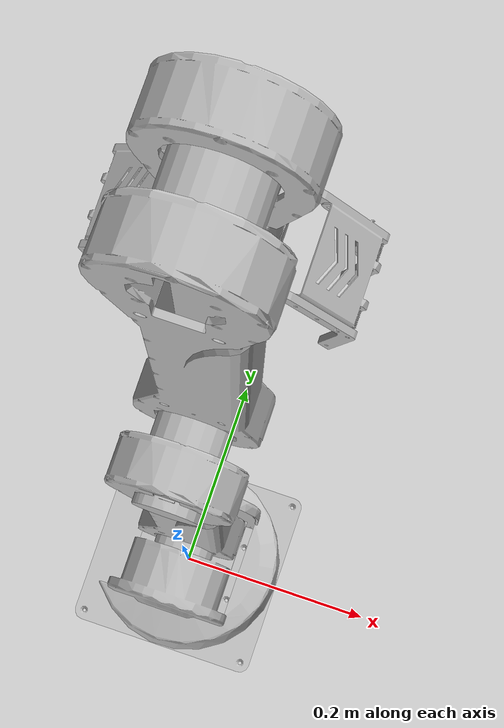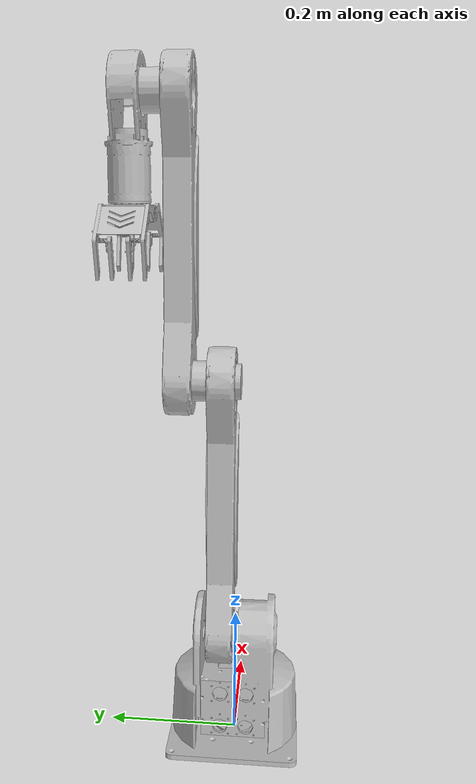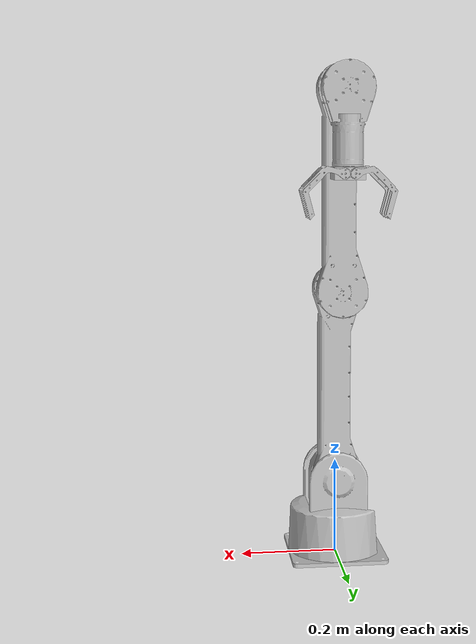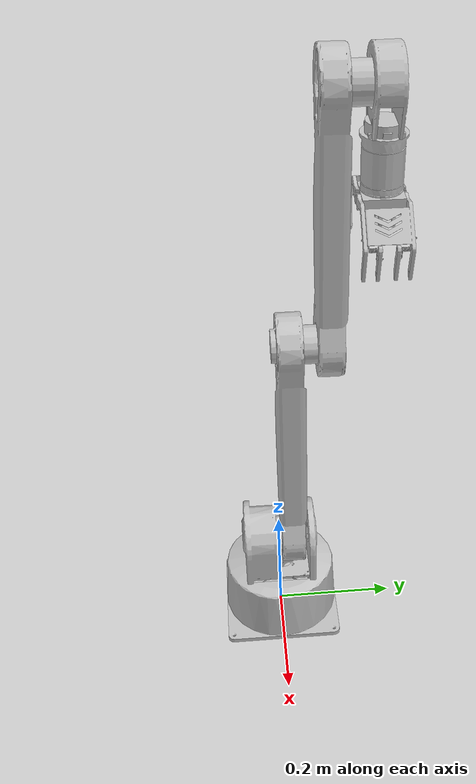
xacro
<?xml version="1.0"?>
<robot name="protobot_arm_gripper" xmlns:xacro="http://ros.org/wiki/xacro">
  <!--Arm body-->
  <xacro:include filename="$(find protobot_arm_description)/urdf/protobot_arm.xacro"/>
  <link name="world"/>
  <xacro:create_arm connected_to="world" xyz="0 0 0.004"/>
  <xacro:include filename="$(find protobot_arm_description)/urdf/protobot_arm.gazebo.xacro"/>
  <xacro:include filename="$(find protobot_arm_description)/urdf/protobot_arm.transmission.xacro"/>
  <xacro:include filename="$(find protobot_gripper_description)/urdf/protobot_gripper.xacro"/>
  <xacro:create_gripper connected_to="flange_motor_link" xyz="0 0 -0.012"/>
  <xacro:include filename="$(find protobot_gripper_description)/urdf/protobot_gripper.transmission.xacro"/>
</robot>

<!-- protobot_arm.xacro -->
<robot xmlns:xacro="http://ros.org/wiki/xacro">
  <xacro:macro name="create_arm" params="connected_to:='' xyz:='0 0 0' rpy:='0 0 0'">
    <xacro:unless value="${connected_to==''}">
      <joint name="arm_base_joint" type="fixed">
        <parent link="${connected_to}"/>
        <child link="arm_base_link"/>
        <origin rpy="${rpy}" xyz="${xyz}"/>
      </joint>
    </xacro:unless>

    <xacro:macro name="inertial_cuboid_with_pose" params="mass x_length y_length z_length *origin">
      <inertial>
        <xacro:insert_block name="origin"/>
        <mass value="${mass}" />
        <inertia ixx="${(1/12) * mass * (y_length*y_length + z_length*z_length)}" ixy="0.0" ixz="0.0"
                 iyy="${(1/12) * mass * (x_length*x_length + z_length*z_length)}" iyz="0.0"
                 izz="${(1/12) * mass * (x_length*x_length + y_length*y_length)}" />
      </inertial>
    </xacro:macro>

    <xacro:macro name="inertial_cylinder_with_pose" params="mass radius length *origin">
      <inertial>
        <xacro:insert_block name="origin"/>
        <mass value="${mass}" />
        <xacro:insert_block name="origin" />
        <inertia ixx="${0.0833333 * mass * (3 * radius * radius + length * length)}" ixy="0.0" ixz="0.0"
          iyy="${0.0833333 * mass * (3 * radius * radius + length * length)}" iyz="0.0"
          izz="${0.5 * mass * radius * radius}" />
      </inertial>
    </xacro:macro>

    <link
      name="arm_base_link">
      <inertial_cuboid_with_pose
        mass="0.2"
        x_length="0.2"
        y_length="0.2"
        z_length="0.008">
        <origin xyz="0 0 0"  rpy="0 0 0"/>
      </inertial_cuboid_with_pose>
      <visual>
        <origin xyz="0 0 -0.004"  rpy="0 0 0"/>
        <geometry>
          <mesh
            filename="package://protobot_arm_description/meshes/base_link.STL" scale="0.001 0.001 0.001"/>
        </geometry>
        <material
          name="">
          <color
            rgba="0.75294 0.75294 0.75294 1" />
        </material>
      </visual>
      <collision>
        <origin
          xyz="0 0 0"
          rpy="0 0 0" />
        <geometry>
          <box size="0.2 0.2 0.008"/>
        </geometry>
      </collision>
    </link>
    <link
      name="rot_link">
      <inertial_cylinder_with_pose
        mass="1.5"
        radius="0.1"
        length="0.1">
        <origin xyz="0 0 0.05"  rpy="0 0 0"/>
      </inertial_cylinder_with_pose>
      <visual>
        <origin
          xyz="0 0 0"
          rpy="0 0 0" />
        <geometry>
          <mesh
            filename="package://protobot_arm_description/meshes/rot_link.STL" scale="0.001 0.001 0.001"/>
        </geometry>
        <material
          name="">
          <color
            rgba="0.75294 0.75294 0.75294 1" />
        </material>
      </visual>
      <collision>
        <origin
          xyz="0 0 0"
          rpy="0 0 0" />
        <geometry>
          <mesh
            filename="package://protobot_arm_description/meshes/rot_collision.STL"/>
        </geometry>
      </collision>
    </link>
    <joint
      name="rot_joint"
      type="continuous">
      <origin
        xyz="0 0 0.004"
        rpy="0 0 0" />
      <parent
        link="arm_base_link" />
      <child
        link="rot_link" />
      <axis
        xyz="0 0 1" />
      <limit
        effort="100"
        velocity="1.0"/>
    </joint>
    <link
      name="umotor_link">
      <inertial_cylinder_with_pose
        mass="1.0"
        radius="0.03"
        length="0.1">
        <origin xyz="0 0.05 0"  rpy="-1.5707 0 0"/>
      </inertial_cylinder_with_pose>
      <visual>
        <origin xyz="0 0 0" rpy="-1.5707 0 0" />
        <geometry>
          <mesh
            filename="package://protobot_arm_description/meshes/motor_link.STL" scale="0.001 0.001 0.001"/>
        </geometry>
        <material
          name="">
          <color
            rgba="0.75294 0.75294 0.75294 1" />
        </material>
      </visual>
      <collision>
        <origin xyz="0 0.05 0"  rpy="-1.5707 0 0" />
        <geometry>
          <cylinder radius="0.03" length="0.1"/>
        </geometry>
      </collision>
    </link>
    <joint
      name="umotor_joint"
      type="fixed">
      <origin
        xyz="0 -0.056 0.161"
        rpy="0 0 0" />
      <parent
        link="rot_link" />
      <child
        link="umotor_link" />
    </joint>
    <link
      name="uarm_link">
      <inertial_cuboid_with_pose
        mass="1.0"
        x_length="0.1"
        y_length="0.05"
        z_length="0.5">
        <origin xyz="0 -0.02 0.2"  rpy="0 0 3.1415926"/>
      </inertial_cuboid_with_pose>
      <visual>
        <origin
          xyz="0 0 0"
          rpy="0 0 3.1415926" />
        <geometry>
          <mesh
            filename="package://protobot_arm_description/meshes/arm_link.STL" scale="0.001 0.001 0.001"/>
        </geometry>
        <material
          name="">
          <color
            rgba="0.75294 0.75294 0.75294 1" />
        </material>
      </visual>
      <collision>
        <origin
          xyz="0 0.004 0"
          rpy="0 0 3.1415926" />
        <geometry>
          <mesh
            filename="package://protobot_arm_description/meshes/arm_collision.STL" />
        </geometry>
      </collision>
    </link>
    <joint
      name="uarm_joint"
      type="revolute">
      <origin
        xyz="0 0.1 0"
        rpy="0 0 0" />
      <parent
        link="umotor_link" />
      <child
        link="uarm_link" />
      <axis
        xyz="0 -1 0" />
      <limit
        lower="-1.5707"
        upper="1.5707"
        effort="100"
        velocity="0.500"/>
    </joint>
    <link
      name="lmotor_link">
      <inertial_cylinder_with_pose
        mass="1.0"
        radius="0.03"
        length="0.1">
        <origin xyz="0 0.05 0"  rpy="-1.5707 0 0"/>
      </inertial_cylinder_with_pose>
      <visual>
        <origin xyz="0 0 0" rpy="-1.5707 1.5707 0" />
        <geometry>
          <mesh
            filename="package://protobot_arm_description/meshes/motor_link.STL" scale="0.001 0.001 0.001"/>
        </geometry>
        <material
          name="">
          <color
            rgba="0.75294 0.75294 0.75294 1" />
        </material>
      </visual>
      <collision>
        <origin xyz="0 0.05 0"  rpy="-1.5707 0 0" />
        <geometry>
          <cylinder radius="0.03" length="0.1"/>
        </geometry>
      </collision>
    </link>
    <joint
      name="lmotor_joint"
      type="fixed">
      <origin
        xyz="0 -0.048 0.4"
        rpy="0 0 0" />
      <parent
        link="uarm_link" />
      <child
        link="lmotor_link" />
    </joint>
    <link
      name="larm_link">
      <inertial_cuboid_with_pose
        mass="1.0"
        x_length="0.1"
        y_length="0.05"
        z_length="0.5">
        <origin xyz="0 -0.02 0.2"  rpy="0 0 3.1415926"/>
      </inertial_cuboid_with_pose>
      <visual>
        <origin
          xyz="0 0 0"
          rpy="0 0 3.1415926" />
        <geometry>
          <mesh
            filename="package://protobot_arm_description/meshes/arm_link.STL" scale="0.001 0.001 0.001"/>
        </geometry>
        <material
          name="">
          <color
            rgba="0.75294 0.75294 0.75294 1" />
        </material>
      </visual>
      <collision>
        <origin
          xyz="0 0.004 0"
          rpy="0 0 3.1415926" />
        <geometry>
          <mesh
            filename="package://protobot_arm_description/meshes/arm_collision.STL" />
        </geometry>
      </collision>
    </link>
    <joint
      name="larm_joint"
      type="continuous">
      <origin
        xyz="0 0.11 0"
        rpy="0 0 0" />
      <parent
        link="lmotor_link" />
      <child
        link="larm_link" />
      <axis
        xyz="0 -1 0" />
      <limit
        effort="100"
        velocity="1.000"/>
    </joint>
    <link name="fake_motor_link">
      <inertial_cylinder_with_pose
        mass="0.25"
        radius="0.03"
        length="0.05">
        <origin xyz="0 0.025 0"  rpy="-1.5707 0 0"/>
      </inertial_cylinder_with_pose>
      <visual>
        <origin xyz="0 0.025 0"  rpy="-1.5707 0 0" />
        <geometry>
          <cylinder radius="0.03" length="0.05"/>
        </geometry>
        <material
          name="">
          <color
            rgba="0.75294 0.75294 0.75294 1" />
        </material>
      </visual>
      <collision>
        <origin xyz="0 0.025 0"  rpy="-1.5707 0 0" />
        <geometry>
          <cylinder radius="0.03" length="0.05"/>
        </geometry>
      </collision>
    </link>
    <joint
       name="passive1_joint"
       type="continuous">
      <origin
        xyz="0 -0.015 0.4"
        rpy="0 0 0" />
      <parent
        link="larm_link" />
      <child
        link="fake_motor_link" />
      <axis xyz="0 -1 0" />
      <mimic joint="uarm_joint" multiplier="-1.000"/>
    </joint>

    <link
      name="end_link">
      <inertial_cylinder_with_pose
        mass="0.25"
        radius="0.05"
        length="0.04">
        <origin xyz="0 0.02 0"  rpy="-1.5707 0 0"/>
      </inertial_cylinder_with_pose>
      <visual>
        <origin
          xyz="0 0 0"
          rpy="0 0 3.1415926" />
        <geometry>
          <mesh
            filename="package://protobot_arm_description/meshes/end_link.STL" scale="0.001 0.001 0.001"/>
        </geometry>
        <material
          name="">
          <color
            rgba="0.75294 0.75294 0.75294 1" />
        </material>
      </visual>
      <collision>
        <origin xyz="0 0.02 0"  rpy="-1.5707 0 0" />
        <geometry>
          <cylinder radius="0.05" length="0.04"/>
        </geometry>
      </collision>
    </link>
    <joint
      name="passive2_joint"
      type="continuous">
      <origin
        xyz="0 0.045 0"
        rpy="0 0 0" />
      <parent
        link="fake_motor_link" />
      <child
        link="end_link" />
      <axis
        xyz="0 -1 0" />
      <mimic joint="larm_joint" multiplier="-1.000"/>
    </joint>
    <link
      name="flange_motor_link">
      <inertial_cylinder_with_pose
        mass="1.0"
        radius="0.03"
        length="0.1">
        <origin xyz="0 0 0.05"  rpy="0 0 0"/>
      </inertial_cylinder_with_pose>
      <visual>
        <origin xyz="0 0 0.1" rpy="0 3.1415926 0" />
        <geometry>
          <mesh
            filename="package://protobot_arm_description/meshes/motor_link.STL" scale="0.001 0.001 0.001"/>
        </geometry>
        <material
          name="">
          <color
            rgba="0.75294 0.75294 0.75294 1" />
        </material>
      </visual>
      <collision>
        <origin xyz="0 0 0.05"  rpy="0 0 0" />
        <geometry>
          <cylinder radius="0.03" length="0.1"/>
        </geometry>
      </collision>
    </link>
    <joint
      name="flange_joint"
      type="continuous">
      <origin
        xyz="0 0.02 -0.15"
        rpy="0 0 0" />
      <parent
        link="end_link" />
      <child
        link="flange_motor_link" />
      <axis
        xyz="0 0 1" />
      <limit
        effort="100"
        velocity="1.000"/>
    </joint>
  </xacro:macro>
</robot>

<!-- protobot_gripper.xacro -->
<robot xmlns:xacro="http://ros.org/wiki/xacro">
  <xacro:macro name="create_gripper" params="connected_to:='' xyz:='0 0 0' rpy:='0 0 0'">
    <xacro:unless value="${connected_to==''}">
      <joint name="gripper_base_joint" type="fixed">
        <parent link="${connected_to}"/>
        <child link="gripper_base_link"/>
        <origin rpy="${rpy}" xyz="${xyz}"/>
      </joint>
    </xacro:unless>

    <xacro:macro name="inertial_cuboid_with_pose" params="mass x_length y_length z_length *origin">
      <inertial>
        <xacro:insert_block name="origin"/>
        <mass value="${mass}" />
        <inertia ixx="${(1/12) * mass * (y_length*y_length + z_length*z_length)}" ixy="0.0" ixz="0.0"
                 iyy="${(1/12) * mass * (x_length*x_length + z_length*z_length)}" iyz="0.0"
                 izz="${(1/12) * mass * (x_length*x_length + y_length*y_length)}" />
      </inertial>
    </xacro:macro>

    <link
      name="gripper_base_link">
      <inertial_cuboid_with_pose
        mass="0.2"
        x_length="0.06"
        y_length="0.06"
        z_length="0.024">
        <origin xyz="0 0 0"  rpy="0 0 0"/>
      </inertial_cuboid_with_pose>
      <visual>
        <origin
          xyz="0 0 0"
          rpy="0 0 0" />
        <geometry>
          <box size="0.06 0.06 0.024"/>
        </geometry>
        <material
          name="">
          <color
            rgba="0.75294 0.75294 0.75294 1" />
        </material>
      </visual>
      <collision>
        <origin
          xyz="0 0 0"
          rpy="0 0 0" />
        <geometry>
          <box size="0.06 0.06 0.024"/>
        </geometry>
      </collision>
    </link>

    <link
      name="finger1_link">
      <inertial>
        <origin
          xyz="0 0 0"
          rpy="0 0 0" />
        <mass
          value="6.9625730e-02" />
        <inertia
          ixx="1.5879474e-04"
          ixy="1.3763814e-08"
          ixz="-1.2889963e-04"
          iyy="3.3239323e-04"
          iyz="5.8014283e-09"
          izz="2.8244275e-04" />
      </inertial>
      <visual>
        <origin
          xyz="0 0 0"
          rpy="0 0 0" />
        <geometry>
          <mesh
            filename="package://protobot_gripper_description/meshes/finger_link.STL"/>
        </geometry>
        <material
          name="">
          <color
            rgba="0.75294 0.75294 0.75294 1" />
        </material>
      </visual>
      <collision>
        <origin
          xyz="0 0 0"
          rpy="0 0 0" />
        <geometry>
          <mesh
            filename="package://protobot_gripper_description/meshes/finger_link.STL"/>
        </geometry>
      </collision>
    </link>

    <joint
      name="finger1_joint"
      type="revolute">
      <origin
        xyz="0.01 0 0"
        rpy="3.1416 0 0" />
      <parent
        link="gripper_base_link" />
      <child
        link="finger1_link" />
      <axis
        xyz="0 1 0" />
      <limit
        lower="-0.7"
        upper="0.3"
        effort="5"
        velocity="1"/>
      <dynamics damping="1.0e-6" friction="8.0e-1"/>
    </joint>

    <link
      name="finger2_link">
      <inertial>
        <origin
          xyz="0 0 0"
          rpy="0 0 0" />
        <mass
          value="6.9625730e-02" />
        <inertia
          ixx="1.5879474e-04"
          ixy="1.3763814e-08"
          ixz="-1.2889963e-04"
          iyy="3.3239323e-04"
          iyz="5.8014283e-09"
          izz="2.8244275e-04" />
      </inertial>
      <visual>
        <origin
          xyz="0 0 0"
          rpy="0 0 0" />
        <geometry>
          <mesh
            filename="package://protobot_gripper_description/meshes/finger_link.STL"/>
        </geometry>
        <material
          name="">
          <color
            rgba="0.75294 0.75294 0.75294 1" />
        </material>
      </visual>
      <collision>
        <origin
          xyz="0 0 0"
          rpy="0 0 0" />
        <geometry>
          <mesh
            filename="package://protobot_gripper_description/meshes/finger_link.STL"/>
        </geometry>
      </collision>
    </link>

    <joint
      name="finger2_joint"
      type="revolute">
      <origin
        xyz="-0.01 0 0"
        rpy="3.1416 0 3.1416" />
      <parent
        link="gripper_base_link" />
      <child
        link="finger2_link" />
      <axis
        xyz="0 1 0" />
      <limit
        lower="-0.7"
        upper="0.3"
        effort="5"
        velocity="1"/>
      <dynamics damping="1.0e-6" friction="8.0e-1"/>
      <mimic joint="finger1_joint" multiplier="1"/>
    </joint>
  </xacro:macro>
</robot>
